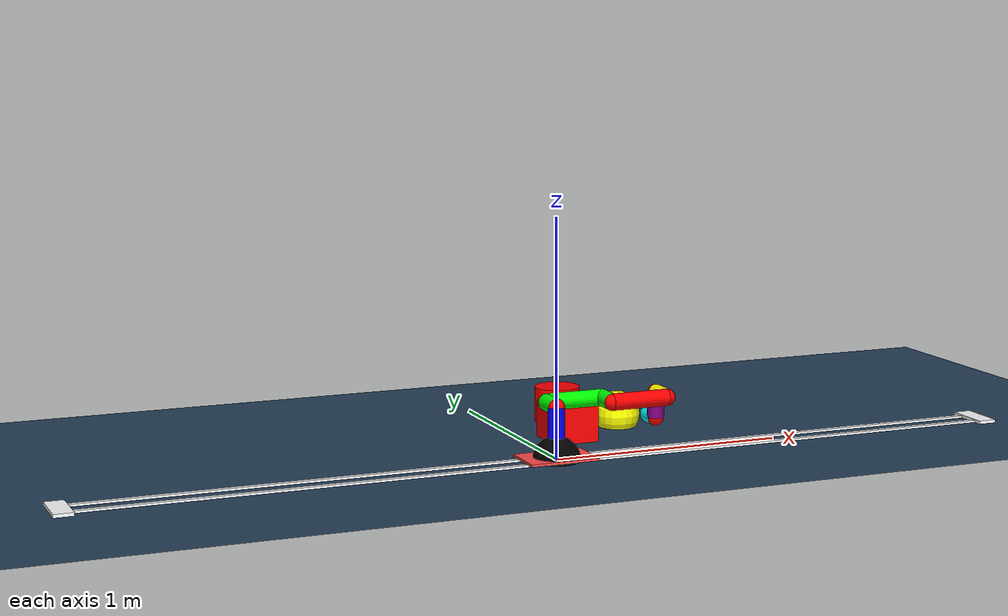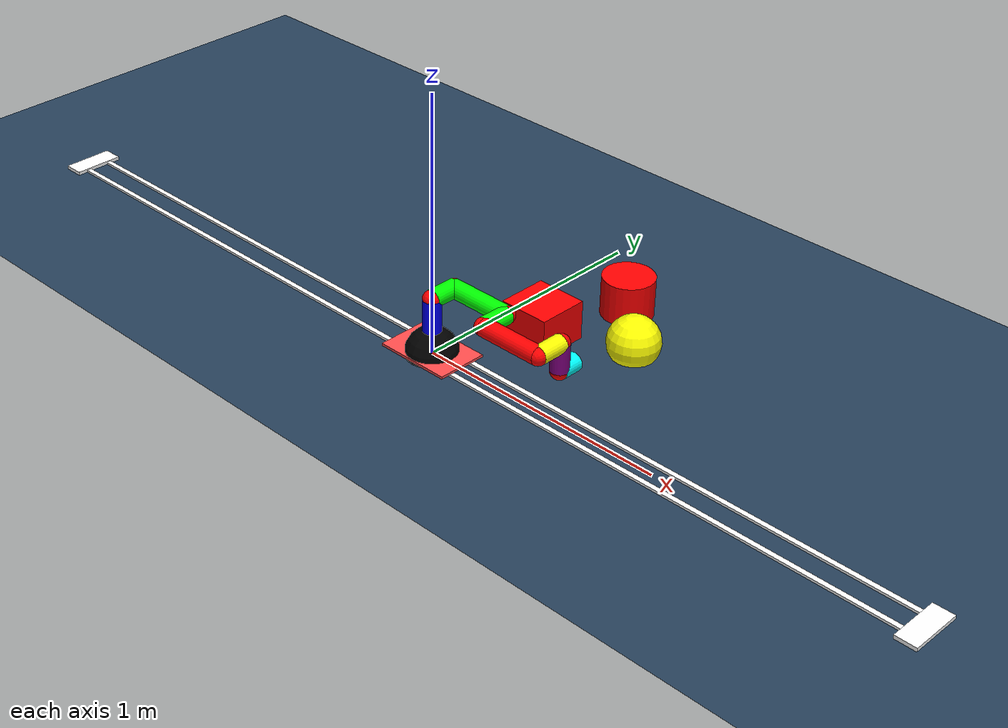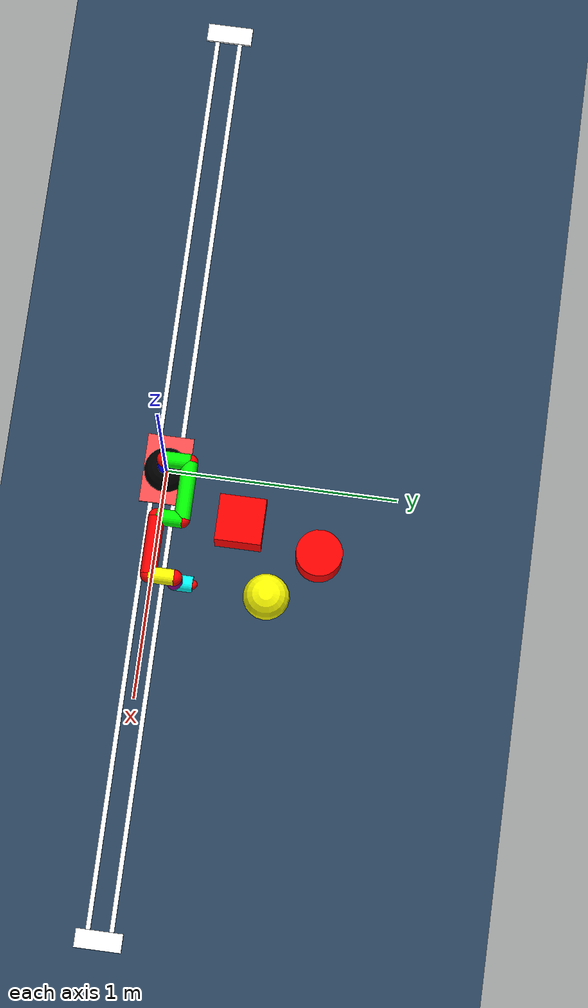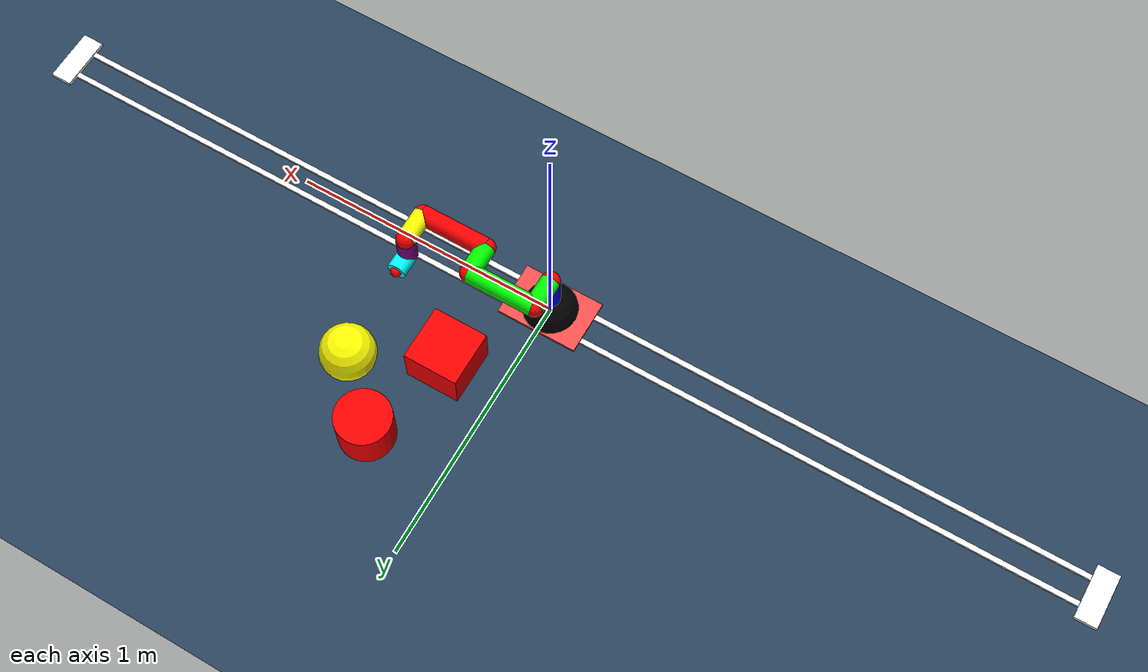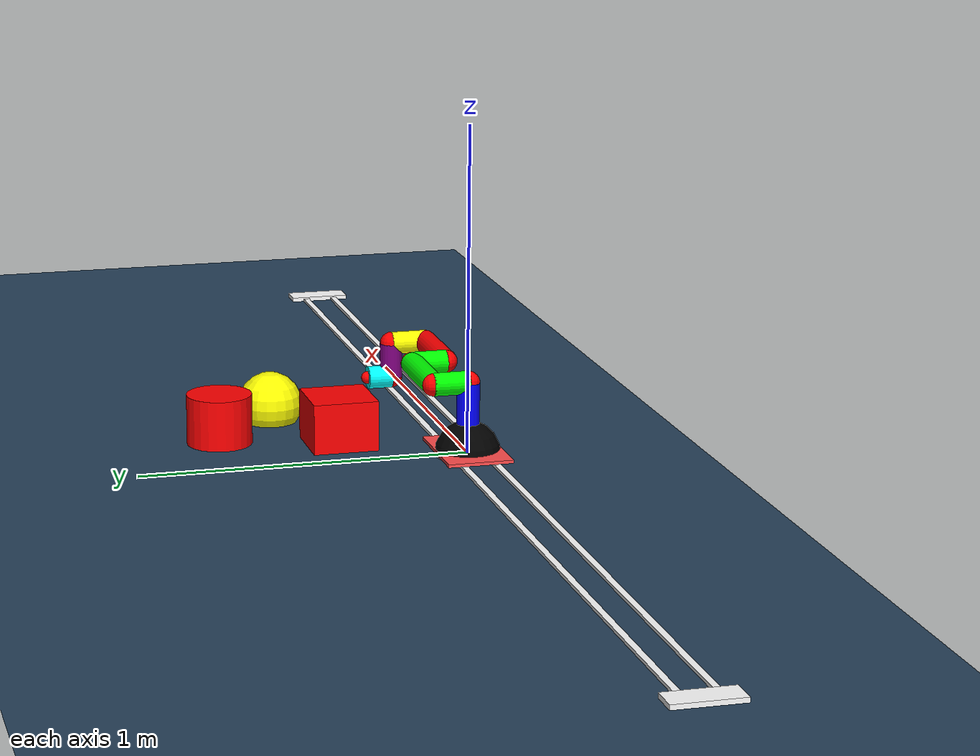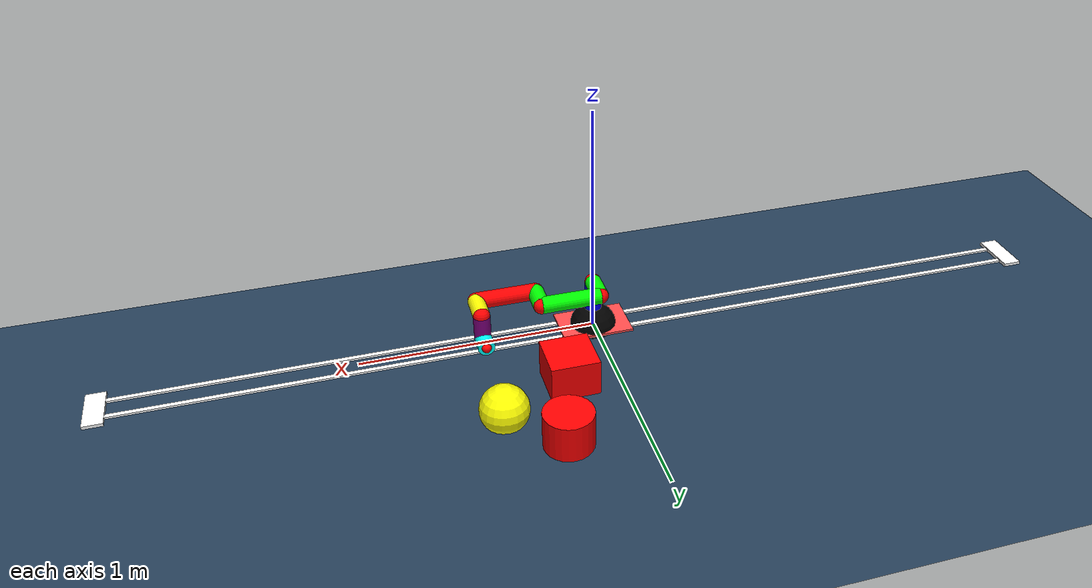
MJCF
<!-- By Sameerjeet Singh Chhabra, https://sjschhabra.github.io/ -->
<mujoco model="custom_robot_by_Sameerjeet">
  <compiler angle="radian" autolimits="true"/>

  <option timestep="0.0010" gravity="0 0 -9.81"/>

  <size njmax="500" nconmax="100"/>

  <visual>
    <global fovy="45"/>
    <map znear="0.01"/>
    <headlight diffuse="0.8 0.8 0.8" ambient="0.5 0.5 0.5"/>
  </visual>

  <asset>
    <material name="blue" rgba="0 0 1 1"/>
    <material name="green" rgba="0 1 0 1"/>
    <material name="red" rgba="1 0 0 1"/>
    <material name="yellow" rgba="1 1 0 1"/>
    <material name="purple" rgba="0.5 0 0.5 1"/>
    <material name="cyan" rgba="0 1 1 1"/>
    <material name="sphere_color" rgba="1.0 0.7 0.0 1.0"/>
    <material name="joint_sphere" rgba="1.0 0.0 0.0 1.0"/>

    <texture type="2d" name="groundplane" builtin="checker" mark="edge"
             rgb1="0.2 0.3 0.4" rgb2="0.1 0.2 0.3"
             width="300" height="300" markrgb="0.8 0.8 0.8"/>
    <material name="groundplane" texture="groundplane" texuniform="true" texrepeat="5 5"
              reflectance="0.2"/>
  </asset>

  <worldbody>
    <geom name="floor" type="plane" size="0 0 0.005" material="groundplane"/>

      <body name="cube" pos="0.2 0.35 0.05">
        <geom name="cube_geom" type="box" size="0.1 0.1 0.1" rgba="1 0 0 1"/>
        <body name="cylinder" pos="0.1 0.35 0">
        <geom name="cylinder_geom" type="cylinder" size="0.1 0.1" rgba="1 0 0 1"/>
        </body>
      </body>

      <body name="sphere" pos="0.5 0.5 0.05">
        <geom name="sphere_geom" type="sphere" size="0.1" rgba="1 1 0 1"/>
      </body>

      <body name="origin" pos="0 0 0">
        <geom name="origin_geom" type="sphere" size="0.1" rgba="0 0 0 1"/>
      </body>

      <geom name="track_geom1" type="box" pos="0 0.05 0" size="2 0.01 0.005" rgba="1 1 1 1"/>
      <geom name="track_geom2" type="box" pos="0 -0.05 0" size="2 0.01 0.005" rgba="1 1 1 1"/>

      <geom name="trackend_geom1" type="box" pos="2.02 0 0" size="0.04 0.1 0.01" rgba="1 1 1 1"/>
      <geom name="trackend_geom2" type="box" pos="-2.02 0 0" size="0.04 0.1 0.01" rgba="1 1 1 1"/>

      <body name="slider_mount" pos="0 0 0.01">

      <geom name="slider_mount_geom" type="box" size="0.15 0.1 0.005" mass="0.1" contype="0" conaffinity="0" rgba="1 0.3 0.3 1"/>

      <!-- Slider joint -->
      <joint name="slider" type="slide" axis="1 0 0"
            range="-0.2 0.2" damping="0.0"/>

      <body name="link1" pos="0 0 0">
        <joint name="joint1" type="hinge" axis="0 0 1"
               range="-3.141592653589793 3.141592653589793"
               damping="50.0"/>

        <geom name="link1_base" type="cylinder" size="0.08 0.005"
              pos="0 0 0.005" material="sphere_color" mass="0.2"/>
        <geom name="link1_main" type="cylinder" size="0.035 0.105"
              pos="0 0 0.105" material="blue" mass="0.5"/>

        <body name="link2" pos="0 0 0.21" quat="0.707107 -0.707107 0 0">
          <joint name="joint2" type="hinge" axis="0 0 1"
                 range="-3.141592653589793 0"
                 damping="50.0"/>

          <geom name="link2_sphere1" type="sphere" size="0.035"
                material="joint_sphere"/>
          <geom name="link2_cyl1" type="cylinder" size="0.035 0.05475"
                pos="0 0 0.05475" material="green" mass="0.3"/>
          <geom name="link2_sphere2" type="sphere" size="0.035"
                pos="0 0 0.107" material="joint_sphere"/>
          <geom name="link2_cyl2" type="cylinder" size="0.035 0.125"
                pos="0.125 0 0.107" quat="0.707107 0 0.707107 0" material="green" mass="0.3"/>
          <geom name="link2_sphere3" type="sphere" size="0.035"
                pos="0.25 0 0.107" material="joint_sphere"/>
          <geom name="link2_cyl3" type="cylinder" size="0.035 0.05475"
                pos="0.25 0 0.05475" material="green" mass="0.3"/>

          <body name="link3" pos="0.25 0 0">
            <joint name="joint3" type="hinge" axis="0 0 1"
                   range="-2.6179938779914944 2.6179938779914944"
                   damping="40.0"/>

            <geom name="link3_sphere" type="sphere" size="0.035"
                  material="joint_sphere"/>
            <geom name="link3_cyl" type="cylinder" size="0.035 0.125"
                  pos="0.125 0 0" quat="0.707107 0 0.707107 0" material="red" mass="0.3"/>

            <body name="link4" pos="0.25 0 0">
              <joint name="joint4" type="hinge" axis="0 0 1"
                     range="-4.53786 1.3962634015954636"
                     damping="30.0"/>

              <geom name="link4_sphere" type="sphere" size="0.035"
                    material="joint_sphere"/>
              <geom name="link4_cyl" type="cylinder" size="0.035 0.05475"
                    pos="0 0 0.05475" material="yellow" mass="0.2"/>

              <body name="link5" pos="0 0 0.1095" quat="0.707107 -0.707107 0 0">
                <joint name="joint5" type="hinge" axis="0 0 1"
                       range="-2.93215 2.93215"
                       damping="20.0"/>

                <geom name="link5_sphere1" type="sphere" size="0.035"
                      material="joint_sphere"/>
                <geom name="link5_cyl" type="cylinder" size="0.035 0.0535"
                      pos="0 0 0.0535" material="purple" mass="0.15"/>
                <geom name="link5_sphere2" type="sphere" size="0.035"
                      pos="0 0 0.107" material="joint_sphere"/>

                <body name="link6" pos="0 -0.0762 0.107" quat="0.707107 0.707107 0 0">
                  <joint name="joint6" type="hinge" axis="0 0 1"
                         range="-3.03687 3.03687"
                         damping="2"/>

                  <geom name="link6_sphere" type="sphere" size="0.02"
                        material="joint_sphere"/>

                  <geom name="link6_cyl" type="cylinder" size="0.035 0.0381"
                        pos="0 0 -0.0381" material="cyan" mass="0.1"/>

                  <site name="ee_site" pos="0 0 -0.0762" size="0.01"
                        rgba="1 0 0 1"/>

                  <geom name="camera_cube" type="box" size="0.015 0.015 0.015"
                        pos="0 0 -0.0762" rgba="1 1 0 1" contype="0" conaffinity="0"/>

                  <!-- Camera -->
                  <camera name="{camera}" pos="0 0 0.0762" xyaxes="-1 0 0 0 1 0" fovy="{fovy}"/>
                </body>
              </body>
            </body>
          </body>
        </body>
      </body>
    </body>
  </worldbody>

 <actuator>
   <position name="slider_actuator" joint="slider" kp="500" ctrlrange="-2 2"/>
   <position name="actuator1" joint="joint1" kp="30" ctrlrange="-3.141592653589793 3.141592653589793"/>
   <position name="actuator2" joint="joint2" kp="10" ctrlrange="-3.141592653589793 0"/>
   <position name="actuator3" joint="joint3" kp="8"  ctrlrange="-2.6179938779914944 2.6179938779914944"/>
   <position name="actuator4" joint="joint4" kp="6" ctrlrange="-4.53786 1.3962634015954636"/>
   <position name="actuator5" joint="joint5" kp="4" ctrlrange="-2.93215 2.93215"/>
   <position name="actuator6" joint="joint6" kp="3" ctrlrange="-3.03687 3.03687"/>
</actuator>

</mujoco>
